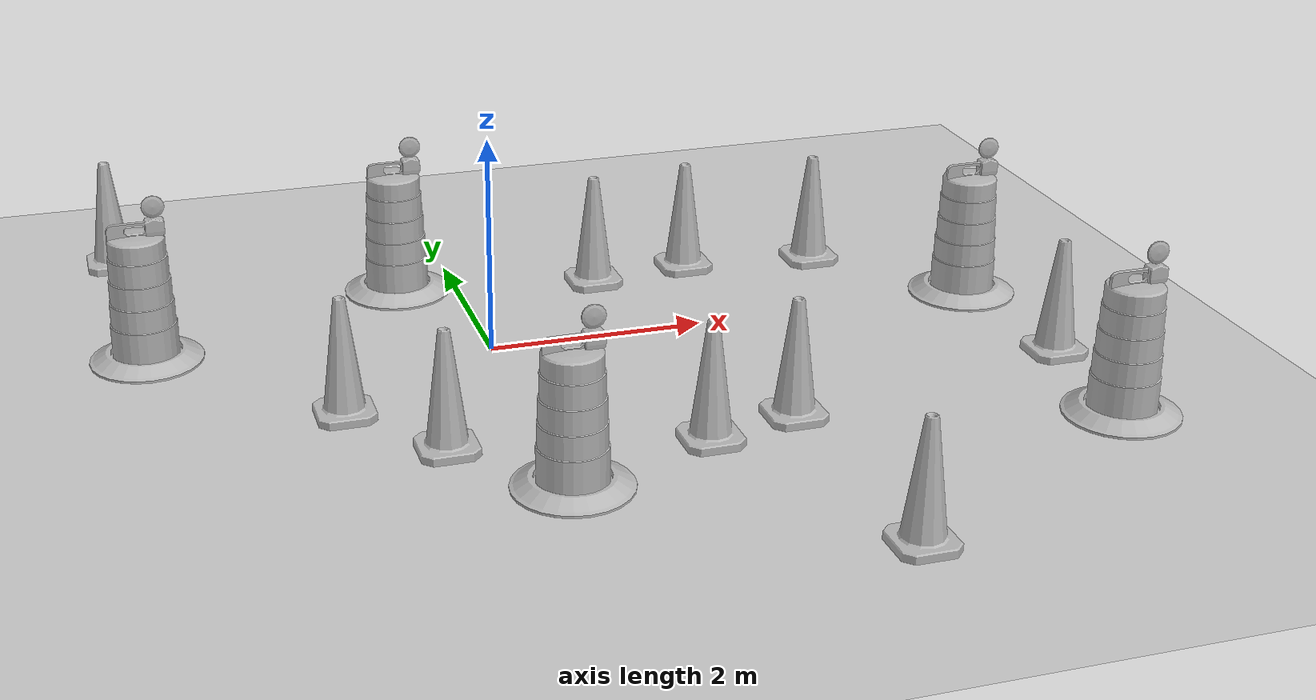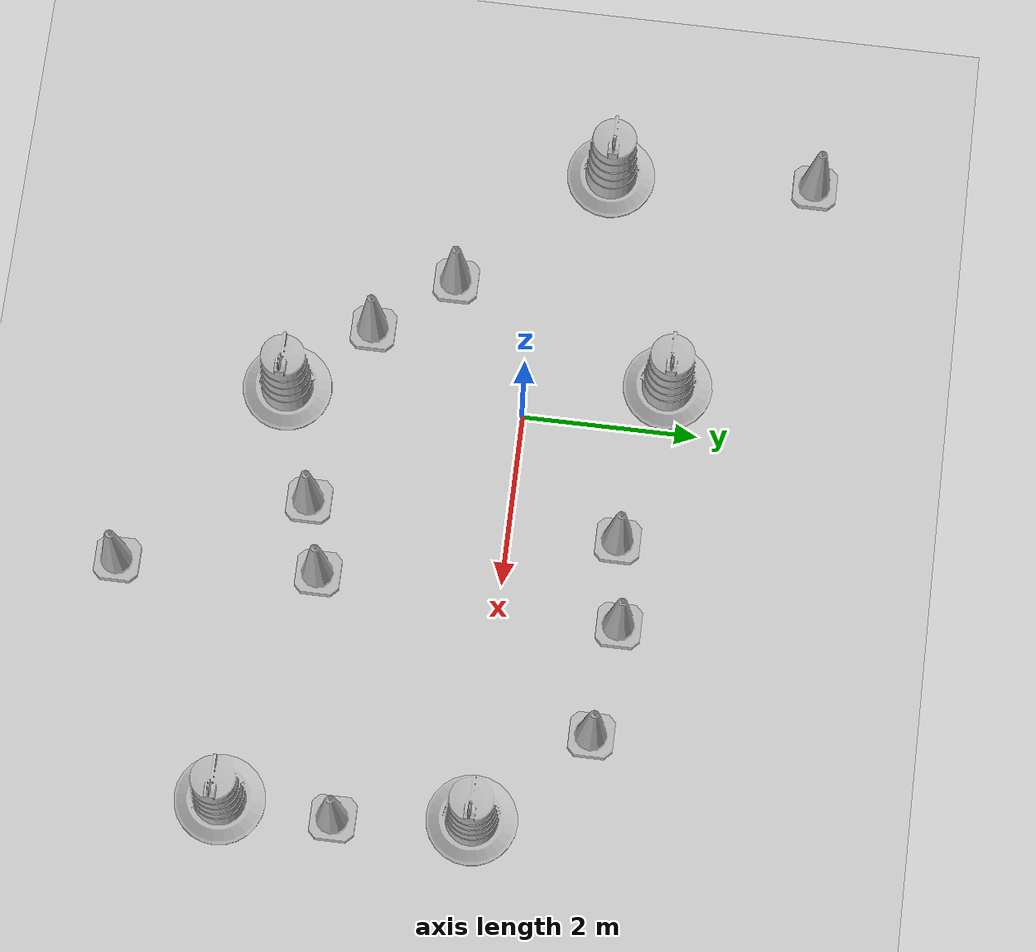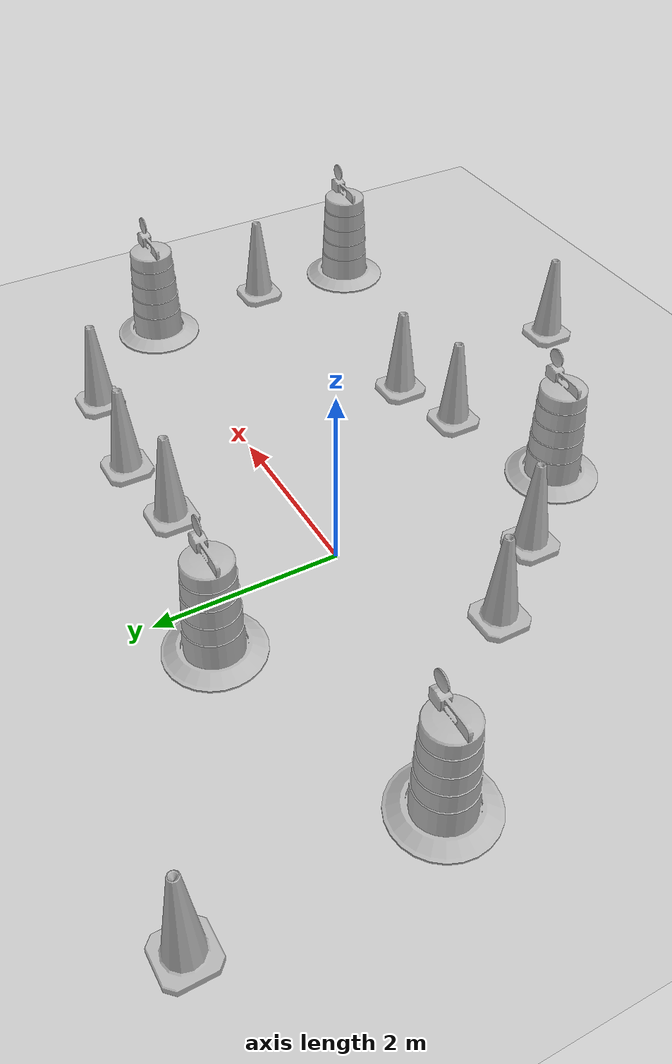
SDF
<sdf version="1.7">
 <world name="default">
  <light name="sun" type="directional">
   <pose>0 0 10 0 -0 0</pose>
   <diffuse>0.8 0.8 0.8 1</diffuse>
   <specular>0.2 0.2 0.2 1</specular>
   <attenuation>
    <range>1000</range>
    <constant>0.9</constant>
    <linear>0.01</linear>
    <quadratic>0.001</quadratic>
   </attenuation>
   <direction>-0.5 0.1 -0.9</direction>
   <spot><inner_angle>0</inner_angle><outer_angle>0</outer_angle><falloff>0</falloff></spot>
  </light>
  <model name="ground_plane">
   <static>1</static>
   <link name="link">
    <collision name="collision">
     <geometry><plane><normal>0 0 1</normal><size>100 100</size></plane></geometry>
     <surface>
      <contact><collide_bitmask>65535</collide_bitmask></contact>
      <friction><ode><mu>100</mu><mu2>50</mu2></ode></friction>
     </surface>
    </collision>
    <visual name="visual">
     <cast_shadows>0</cast_shadows>
     <geometry><plane><normal>0 0 1</normal><size>100 100</size></plane></geometry>
     <material>
      <script><uri>file://media/materials/scripts/gazebo.material</uri><name>Gazebo/Grey</name></script>
     </material>
    </visual>
   </link>
  </model>
  <gravity>0 0 -9.8</gravity>
  <magnetic_field>6e-06 2.3e-05 -4.2e-05</magnetic_field>
  <atmosphere type="adiabatic"/>
  <physics type="ode">
   <max_step_size>0.001</max_step_size>
   <real_time_factor>1</real_time_factor>
   <real_time_update_rate>1000</real_time_update_rate>
  </physics>
  <scene><ambient>0.4 0.4 0.4 1</ambient><background>0.7 0.7 0.7 1</background><shadows>1</shadows></scene>
  <audio><device>default</device></audio>
  <spherical_coordinates>
   <surface_model>EARTH_WGS84</surface_model>
   <latitude_deg>0</latitude_deg>
   <longitude_deg>0</longitude_deg>
   <elevation>0</elevation>
   <heading_deg>0</heading_deg>
  </spherical_coordinates>
  <model name="Construction Barrel">
   <link name="link">
    <inertial>
     <pose>0 0 0.4 0 -0 0</pose>
     <mass>500</mass>
     <inertia><ixx>51.2096</ixx><iyy>51.2096</iyy><izz>25</izz><ixy>0</ixy><ixz>0</ixz><iyz>0</iyz></inertia>
    </inertial>
    <collision name="collision">
     <geometry><mesh><uri>model://construction_barrel/meshes/construction_barrel.dae</uri></mesh></geometry>
    </collision>
    <visual name="visual">
     <geometry><mesh><uri>model://construction_barrel/meshes/construction_barrel.dae</uri></mesh></geometry>
    </visual>
   </link>
   <pose>-3.02727 0.672481 0 0 0 -2.5e-05</pose>
  </model>
  <model name="Construction Barrel_0">
   <link name="link">
    <inertial>
     <pose>0 0 0.4 0 -0 0</pose>
     <mass>500</mass>
     <inertia><ixx>51.2096</ixx><iyy>51.2096</iyy><izz>25</izz><ixy>0</ixy><ixz>0</ixz><iyz>0</iyz></inertia>
    </inertial>
    <collision name="collision">
     <geometry><mesh><uri>model://construction_barrel/meshes/construction_barrel.dae</uri></mesh></geometry>
    </collision>
    <visual name="visual">
     <geometry><mesh><uri>model://construction_barrel/meshes/construction_barrel.dae</uri></mesh></geometry>
    </visual>
   </link>
   <pose>-0.015104 -2.70117 0 0 0 -2.3e-05</pose>
  </model>
  <model name="Construction Cone">
   <link name="link">
    <collision name="collision">
     <geometry>
      <mesh><scale>10 10 10</scale><uri>model://construction_cone/meshes/construction_cone.dae</uri></mesh>
     </geometry>
    </collision>
    <visual name="visual">
     <geometry>
      <mesh><scale>10 10 10</scale><uri>model://construction_cone/meshes/construction_cone.dae</uri></mesh>
     </geometry>
    </visual>
    <inertial>
     <inertia><ixx>1</ixx><ixy>0</ixy><ixz>0</ixz><iyy>1</iyy><iyz>0</iyz><izz>1</izz></inertia>
     <mass>1</mass>
    </inertial>
   </link>
   <pose>2.11893 -2.05873 -1e-05 0 -0 0</pose>
  </model>
  <model name="Construction Cone_0">
   <link name="link">
    <collision name="collision">
     <geometry>
      <mesh><scale>10 10 10</scale><uri>model://construction_cone/meshes/construction_cone.dae</uri></mesh>
     </geometry>
    </collision>
    <visual name="visual">
     <geometry>
      <mesh><scale>10 10 10</scale><uri>model://construction_cone/meshes/construction_cone.dae</uri></mesh>
     </geometry>
    </visual>
    <inertial>
     <inertia><ixx>1</ixx><ixy>0</ixy><ixz>0</ixz><iyy>1</iyy><iyz>0</iyz><izz>1</izz></inertia>
     <mass>1</mass>
    </inertial>
   </link>
   <pose>-1.5191 -0.948369 -0 0 -0 0</pose>
  </model>
  <model name="Construction Barrel_1">
   <link name="link">
    <inertial>
     <pose>0 0 0.4 0 -0 0</pose>
     <mass>500</mass>
     <inertia><ixx>51.2096</ixx><iyy>51.2096</iyy><izz>25</izz><ixy>0</ixy><ixz>0</ixz><iyz>0</iyz></inertia>
    </inertial>
    <collision name="collision">
     <geometry><mesh><uri>model://construction_barrel/meshes/construction_barrel.dae</uri></mesh></geometry>
    </collision>
    <visual name="visual">
     <geometry><mesh><uri>model://construction_barrel/meshes/construction_barrel.dae</uri></mesh></geometry>
    </visual>
   </link>
   <pose>-0.549453 1.59995 0 0 0 -2e-05</pose>
  </model>
  <model name="Construction Cone_1">
   <link name="link">
    <collision name="collision">
     <geometry>
      <mesh><scale>10 10 10</scale><uri>model://construction_cone/meshes/construction_cone.dae</uri></mesh>
     </geometry>
    </collision>
    <visual name="visual">
     <geometry>
      <mesh><scale>10 10 10</scale><uri>model://construction_cone/meshes/construction_cone.dae</uri></mesh>
     </geometry>
    </visual>
    <inertial>
     <inertia><ixx>1</ixx><ixy>0</ixy><ixz>0</ixz><iyy>1</iyy><iyz>0</iyz><izz>1</izz></inertia>
     <mass>1</mass>
    </inertial>
   </link>
   <pose>1.33712 1.23978 -0 0 -0 0</pose>
  </model>
  <model name="Construction Cone_2">
   <link name="link">
    <collision name="collision">
     <geometry>
      <mesh><scale>10 10 10</scale><uri>model://construction_cone/meshes/construction_cone.dae</uri></mesh>
     </geometry>
    </collision>
    <visual name="visual">
     <geometry>
      <mesh><scale>10 10 10</scale><uri>model://construction_cone/meshes/construction_cone.dae</uri></mesh>
     </geometry>
    </visual>
    <inertial>
     <inertia><ixx>1</ixx><ixy>0</ixy><ixz>0</ixz><iyy>1</iyy><iyz>0</iyz><izz>1</izz></inertia>
     <mass>1</mass>
    </inertial>
   </link>
   <pose>2.31277 1.35829 -0 0 -0 0</pose>
  </model>
  <model name="Construction Cone_3">
   <link name="link">
    <collision name="collision">
     <geometry>
      <mesh><scale>10 10 10</scale><uri>model://construction_cone/meshes/construction_cone.dae</uri></mesh>
     </geometry>
    </collision>
    <visual name="visual">
     <geometry>
      <mesh><scale>10 10 10</scale><uri>model://construction_cone/meshes/construction_cone.dae</uri></mesh>
     </geometry>
    </visual>
    <inertial>
     <inertia><ixx>1</ixx><ixy>0</ixy><ixz>0</ixz><iyy>1</iyy><iyz>0</iyz><izz>1</izz></inertia>
     <mass>1</mass>
    </inertial>
   </link>
   <pose>1.29302 -2.27348 -0 0 -1e-06 0</pose>
  </model>
  <model name="Construction Cone_4">
   <link name="link">
    <collision name="collision">
     <geometry>
      <mesh><scale>10 10 10</scale><uri>model://construction_cone/meshes/construction_cone.dae</uri></mesh>
     </geometry>
    </collision>
    <visual name="visual">
     <geometry>
      <mesh><scale>10 10 10</scale><uri>model://construction_cone/meshes/construction_cone.dae</uri></mesh>
     </geometry>
    </visual>
    <inertial>
     <inertia><ixx>1</ixx><ixy>0</ixy><ixz>0</ixz><iyy>1</iyy><iyz>0</iyz><izz>1</izz></inertia>
     <mass>1</mass>
    </inertial>
   </link>
   <pose>-0.829104 -1.81883 -1e-05 0 -0 0</pose>
  </model>
  <model name="Construction Barrel_2">
   <link name="link">
    <inertial>
     <pose>0 0 0.4 0 -0 0</pose>
     <mass>500</mass>
     <inertia><ixx>51.2096</ixx><iyy>51.2096</iyy><izz>25</izz><ixy>0</ixy><ixz>0</ixz><iyz>0</iyz></inertia>
    </inertial>
    <collision name="collision">
     <geometry><mesh><uri>model://construction_barrel/meshes/construction_barrel.dae</uri></mesh></geometry>
    </collision>
    <visual name="visual">
     <geometry><mesh><uri>model://construction_barrel/meshes/construction_barrel.dae</uri></mesh></geometry>
    </visual>
   </link>
   <pose>4.7012 -0.004501 0 0 -0 -1.3e-05</pose>
  </model>
  <model name="Construction Barrel_3">
   <link name="link">
    <inertial>
     <pose>0 0 0.4 0 -0 0</pose>
     <mass>500</mass>
     <inertia><ixx>51.2096</ixx><iyy>51.2096</iyy><izz>25</izz><ixy>0</ixy><ixz>0</ixz><iyz>0</iyz></inertia>
    </inertial>
    <collision name="collision">
     <geometry><mesh><uri>model://construction_barrel/meshes/construction_barrel.dae</uri></mesh></geometry>
    </collision>
    <visual name="visual">
     <geometry><mesh><uri>model://construction_barrel/meshes/construction_barrel.dae</uri></mesh></geometry>
    </visual>
   </link>
   <pose>4.81058 -2.79307 0 0 0 -1e-05</pose>
  </model>
  <model name="Construction Cone_5">
   <link name="link">
    <collision name="collision">
     <geometry>
      <mesh><scale>10 10 10</scale><uri>model://construction_cone/meshes/construction_cone.dae</uri></mesh>
     </geometry>
    </collision>
    <visual name="visual">
     <geometry>
      <mesh><scale>10 10 10</scale><uri>model://construction_cone/meshes/construction_cone.dae</uri></mesh>
     </geometry>
    </visual>
    <inertial>
     <inertia><ixx>1</ixx><ixy>0</ixy><ixz>0</ixz><iyy>1</iyy><iyz>0</iyz><izz>1</izz></inertia>
     <mass>1</mass>
    </inertial>
   </link>
   <pose>4.87417 -1.52347 -0 0 -0 0</pose>
  </model>
  <model name="Construction Cone_6">
   <link name="link">
    <collision name="collision">
     <geometry>
      <mesh><scale>10 10 10</scale><uri>model://construction_cone/meshes/construction_cone.dae</uri></mesh>
     </geometry>
    </collision>
    <visual name="visual">
     <geometry>
      <mesh><scale>10 10 10</scale><uri>model://construction_cone/meshes/construction_cone.dae</uri></mesh>
     </geometry>
    </visual>
    <inertial>
     <inertia><ixx>1</ixx><ixy>0</ixy><ixz>0</ixz><iyy>1</iyy><iyz>0</iyz><izz>1</izz></inertia>
     <mass>1</mass>
    </inertial>
   </link>
   <pose>3.59706 1.19652 -0 0 -0 0</pose>
  </model>
  <model name="Construction Cone_7">
   <link name="link">
    <collision name="collision">
     <geometry>
      <mesh><scale>10 10 10</scale><uri>model://construction_cone/meshes/construction_cone.dae</uri></mesh>
     </geometry>
    </collision>
    <visual name="visual">
     <geometry>
      <mesh><scale>10 10 10</scale><uri>model://construction_cone/meshes/construction_cone.dae</uri></mesh>
     </geometry>
    </visual>
    <inertial>
     <inertia><ixx>1</ixx><ixy>0</ixy><ixz>0</ixz><iyy>1</iyy><iyz>0</iyz><izz>1</izz></inertia>
     <mass>1</mass>
    </inertial>
   </link>
   <pose>-3.15922 3.03081 -0 0 -0 0</pose>
  </model>
  <model name="Construction Cone_8">
   <link name="link">
    <collision name="collision">
     <geometry>
      <mesh><scale>10 10 10</scale><uri>model://construction_cone/meshes/construction_cone.dae</uri></mesh>
     </geometry>
    </collision>
    <visual name="visual">
     <geometry>
      <mesh><scale>10 10 10</scale><uri>model://construction_cone/meshes/construction_cone.dae</uri></mesh>
     </geometry>
    </visual>
    <inertial>
     <inertia><ixx>1</ixx><ixy>0</ixy><ixz>0</ixz><iyy>1</iyy><iyz>0</iyz><izz>1</izz></inertia>
     <mass>1</mass>
    </inertial>
   </link>
   <pose>2.23362 -4.32005 -0 0 -0 0</pose>
  </model>
 </world>
</sdf>
